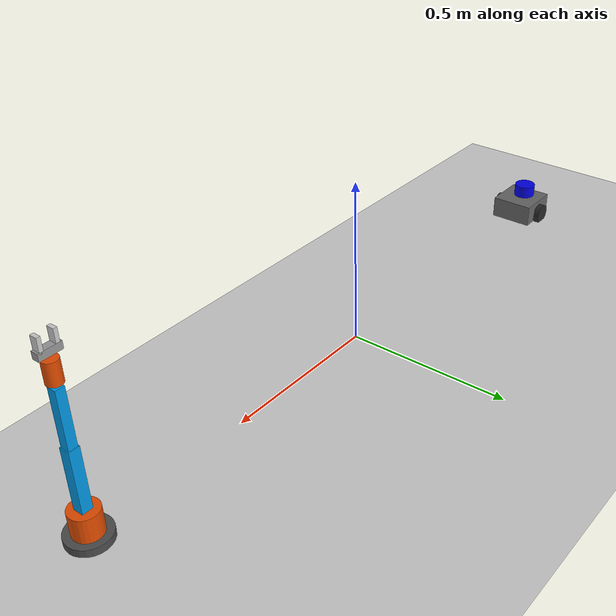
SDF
<?xml version="1.0" ?>
<sdf version="1.9">
  <world name="default">
    <physics name="1ms" type="ode">
      <max_step_size>0.001</max_step_size>
      <real_time_factor>1.0</real_time_factor>
    </physics>

    <light type="directional" name="sun">
      <cast_shadows>true</cast_shadows>
      <pose>0 0 10 0 0 0</pose>
      <diffuse>0.8 0.8 0.8 1</diffuse>
      <direction>-0.5 0.1 -0.9</direction>
    </light>

    <model name="ground_plane">
      <static>true</static>
      <link name="link">
        <collision name="collision">
          <geometry><plane><normal>0 0 1</normal></plane></geometry>
          <surface><friction><ode><mu>1.0</mu><mu2>1.0</mu2></ode></friction></surface>
        </collision>
        <visual name="visual">
          <geometry><plane><normal>0 0 1</normal><size>100 100</size></plane></geometry>
          <material><ambient>0.8 0.8 0.8 1</ambient><diffuse>0.8 0.8 0.8 1</diffuse></material>
        </visual>
      </link>
    </model>

    <!-- ========== TURTLEBOT3 (İKA) ========== -->
    <model name="turtlebot3">
      <pose>-1 0 0.035 0 0 0</pose>
      <link name="base_link">
        <inertial><mass>1.0</mass>
          <inertia><ixx>0.001</ixx><ixy>0</ixy><ixz>0</ixz><iyy>0.001</iyy><iyz>0</iyz><izz>0.001</izz></inertia>
        </inertial>
        <visual name="body"><geometry><box><size>0.14 0.14 0.07</size></box></geometry>
          <material><ambient>0.3 0.3 0.3 1</ambient><diffuse>0.4 0.4 0.4 1</diffuse></material>
        </visual>
        <collision name="body"><geometry><box><size>0.14 0.14 0.07</size></box></geometry></collision>
        <collision name="caster">
          <pose>-0.05 0 -0.023 0 0 0</pose>
          <geometry><sphere><radius>0.012</radius></sphere></geometry>
          <surface><friction><ode><mu>0</mu><mu2>0</mu2><slip1>1</slip1><slip2>1</slip2></ode></friction></surface>
        </collision>
      </link>
      <link name="lidar"><pose relative_to="base_link">-0.02 0 0.055 0 0 0</pose>
        <inertial><mass>0.05</mass><inertia><ixx>0.00001</ixx><ixy>0</ixy><ixz>0</ixz><iyy>0.00001</iyy><iyz>0</iyz><izz>0.00001</izz></inertia></inertial>
        <visual name="v"><geometry><cylinder><radius>0.035</radius><length>0.04</length></cylinder></geometry>
          <material><ambient>0 0 0.8 1</ambient><diffuse>0 0 0.9 1</diffuse></material></visual>
      </link>
      <joint name="lidar_joint" type="fixed"><parent>base_link</parent><child>lidar</child></joint>
      <link name="wl"><pose relative_to="base_link">0 0.08 -0.012 -1.5708 0 0</pose>
        <inertial><mass>0.05</mass><inertia><ixx>0.00005</ixx><ixy>0</ixy><ixz>0</ixz><iyy>0.00005</iyy><iyz>0</iyz><izz>0.00005</izz></inertia></inertial>
        <visual name="v"><geometry><cylinder><radius>0.033</radius><length>0.018</length></cylinder></geometry>
          <material><ambient>0.1 0.1 0.1 1</ambient><diffuse>0.15 0.15 0.15 1</diffuse></material></visual>
        <collision name="c"><geometry><cylinder><radius>0.033</radius><length>0.018</length></cylinder></geometry>
          <surface><friction><ode><mu>1.5</mu><mu2>1.5</mu2></ode></friction></surface></collision>
      </link>
      <link name="wr"><pose relative_to="base_link">0 -0.08 -0.012 -1.5708 0 0</pose>
        <inertial><mass>0.05</mass><inertia><ixx>0.00005</ixx><ixy>0</ixy><ixz>0</ixz><iyy>0.00005</iyy><iyz>0</iyz><izz>0.00005</izz></inertia></inertial>
        <visual name="v"><geometry><cylinder><radius>0.033</radius><length>0.018</length></cylinder></geometry>
          <material><ambient>0.1 0.1 0.1 1</ambient><diffuse>0.15 0.15 0.15 1</diffuse></material></visual>
        <collision name="c"><geometry><cylinder><radius>0.033</radius><length>0.018</length></cylinder></geometry>
          <surface><friction><ode><mu>1.5</mu><mu2>1.5</mu2></ode></friction></surface></collision>
      </link>
      <joint name="wl_joint" type="revolute"><parent>base_link</parent><child>wl</child><axis><xyz>0 0 1</xyz></axis></joint>
      <joint name="wr_joint" type="revolute"><parent>base_link</parent><child>wr</child><axis><xyz>0 0 1</xyz></axis></joint>
      <plugin filename="libignition-gazebo6-diff-drive-system.so" name="ignition::gazebo::systems::DiffDrive">
        <left_joint>wl_joint</left_joint><right_joint>wr_joint</right_joint>
        <wheel_separation>0.160</wheel_separation><wheel_radius>0.033</wheel_radius>
        <topic>ugv_cmd_vel</topic><odom_topic>ugv_odom</odom_topic><odom_publish_frequency>30</odom_publish_frequency>
      </plugin>
    </model>

    <!-- ========== ROBOT KOL (6-DOF) ========== -->
    <model name="robot_arm">
      <pose>1 0 0 0 0 0</pose>

      <!-- Base (sabit) -->
      <link name="base_link">
        <inertial><mass>2.0</mass><inertia><ixx>0.01</ixx><ixy>0</ixy><ixz>0</ixz><iyy>0.01</iyy><iyz>0</iyz><izz>0.01</izz></inertia></inertial>
        <visual name="v"><geometry><cylinder><radius>0.06</radius><length>0.04</length></cylinder></geometry>
          <material><ambient>0.2 0.2 0.2 1</ambient><diffuse>0.3 0.3 0.3 1</diffuse></material></visual>
        <collision name="c"><geometry><cylinder><radius>0.06</radius><length>0.04</length></cylinder></geometry></collision>
      </link>

      <!-- Link 1 - Shoulder rotation -->
      <link name="link1">
        <pose relative_to="base_link">0 0 0.05 0 0 0</pose>
        <inertial><mass>0.5</mass><inertia><ixx>0.001</ixx><ixy>0</ixy><ixz>0</ixz><iyy>0.001</iyy><iyz>0</iyz><izz>0.001</izz></inertia></inertial>
        <visual name="v"><geometry><cylinder><radius>0.04</radius><length>0.08</length></cylinder></geometry>
          <material><ambient>0.8 0.2 0.0 1</ambient><diffuse>0.9 0.3 0.0 1</diffuse></material></visual>
        <collision name="c"><geometry><cylinder><radius>0.04</radius><length>0.08</length></cylinder></geometry></collision>
      </link>
      <joint name="world_fix" type="fixed"><parent>world</parent><child>base_link</child></joint>
      <joint name="joint1" type="revolute">
        <parent>base_link</parent><child>link1</child>
        <axis><xyz>0 0 1</xyz><limit><lower>-3.14</lower><upper>3.14</upper><effort>50</effort></limit></axis>
      </joint>

      <!-- Link 2 - Shoulder lift -->
      <link name="link2">
        <pose relative_to="link1">0 0 0.12 0 0 0</pose>
        <inertial><mass>0.4</mass><inertia><ixx>0.002</ixx><ixy>0</ixy><ixz>0</ixz><iyy>0.002</iyy><iyz>0</iyz><izz>0.0005</izz></inertia></inertial>
        <visual name="v"><geometry><box><size>0.03 0.03 0.2</size></box></geometry>
          <material><ambient>0.0 0.5 0.8 1</ambient><diffuse>0.0 0.6 0.9 1</diffuse></material></visual>
        <collision name="c"><geometry><box><size>0.03 0.03 0.2</size></box></geometry></collision>
      </link>
      <joint name="joint2" type="revolute">
        <parent>link1</parent><child>link2</child>
        <axis><xyz>0 1 0</xyz><limit><lower>-1.57</lower><upper>1.57</upper><effort>50</effort></limit></axis>
      </joint>

      <!-- Link 3 - Elbow -->
      <link name="link3">
        <pose relative_to="link2">0 0 0.18 0 0 0</pose>
        <inertial><mass>0.3</mass><inertia><ixx>0.001</ixx><ixy>0</ixy><ixz>0</ixz><iyy>0.001</iyy><iyz>0</iyz><izz>0.0003</izz></inertia></inertial>
        <visual name="v"><geometry><box><size>0.025 0.025 0.16</size></box></geometry>
          <material><ambient>0.0 0.5 0.8 1</ambient><diffuse>0.0 0.6 0.9 1</diffuse></material></visual>
        <collision name="c"><geometry><box><size>0.025 0.025 0.16</size></box></geometry></collision>
      </link>
      <joint name="joint3" type="revolute">
        <parent>link2</parent><child>link3</child>
        <axis><xyz>0 1 0</xyz><limit><lower>-2.0</lower><upper>2.0</upper><effort>30</effort></limit></axis>
      </joint>

      <!-- Link 4 - Wrist rotation -->
      <link name="link4">
        <pose relative_to="link3">0 0 0.12 0 0 0</pose>
        <inertial><mass>0.2</mass><inertia><ixx>0.0005</ixx><ixy>0</ixy><ixz>0</ixz><iyy>0.0005</iyy><iyz>0</iyz><izz>0.0002</izz></inertia></inertial>
        <visual name="v"><geometry><cylinder><radius>0.02</radius><length>0.06</length></cylinder></geometry>
          <material><ambient>0.8 0.2 0.0 1</ambient><diffuse>0.9 0.3 0.0 1</diffuse></material></visual>
        <collision name="c"><geometry><cylinder><radius>0.02</radius><length>0.06</length></cylinder></geometry></collision>
      </link>
      <joint name="joint4" type="revolute">
        <parent>link3</parent><child>link4</child>
        <axis><xyz>0 0 1</xyz><limit><lower>-3.14</lower><upper>3.14</upper><effort>20</effort></limit></axis>
      </joint>

      <!-- Gripper base -->
      <link name="gripper_base">
        <pose relative_to="link4">0 0 0.05 0 0 0</pose>
        <inertial><mass>0.1</mass><inertia><ixx>0.0001</ixx><ixy>0</ixy><ixz>0</ixz><iyy>0.0001</iyy><iyz>0</iyz><izz>0.0001</izz></inertia></inertial>
        <visual name="v"><geometry><box><size>0.06 0.02 0.02</size></box></geometry>
          <material><ambient>0.5 0.5 0.5 1</ambient><diffuse>0.6 0.6 0.6 1</diffuse></material></visual>
        <collision name="c"><geometry><box><size>0.06 0.02 0.02</size></box></geometry></collision>
      </link>
      <joint name="gripper_joint" type="fixed">
        <parent>link4</parent><child>gripper_base</child>
      </joint>

      <!-- Left finger -->
      <link name="finger_left">
        <pose relative_to="gripper_base">-0.02 0 0.025 0 0 0</pose>
        <inertial><mass>0.02</mass><inertia><ixx>0.00001</ixx><ixy>0</ixy><ixz>0</ixz><iyy>0.00001</iyy><iyz>0</iyz><izz>0.00001</izz></inertia></inertial>
        <visual name="v"><geometry><box><size>0.01 0.02 0.04</size></box></geometry>
          <material><ambient>0.7 0.7 0.7 1</ambient><diffuse>0.8 0.8 0.8 1</diffuse></material></visual>
        <collision name="c"><geometry><box><size>0.01 0.02 0.04</size></box></geometry></collision>
      </link>
      <joint name="finger_left_joint" type="prismatic">
        <parent>gripper_base</parent><child>finger_left</child>
        <axis><xyz>1 0 0</xyz><limit><lower>-0.02</lower><upper>0.0</upper><effort>10</effort></limit></axis>
      </joint>

      <!-- Right finger -->
      <link name="finger_right">
        <pose relative_to="gripper_base">0.02 0 0.025 0 0 0</pose>
        <inertial><mass>0.02</mass><inertia><ixx>0.00001</ixx><ixy>0</ixy><ixz>0</ixz><iyy>0.00001</iyy><iyz>0</iyz><izz>0.00001</izz></inertia></inertial>
        <visual name="v"><geometry><box><size>0.01 0.02 0.04</size></box></geometry>
          <material><ambient>0.7 0.7 0.7 1</ambient><diffuse>0.8 0.8 0.8 1</diffuse></material></visual>
        <collision name="c"><geometry><box><size>0.01 0.02 0.04</size></box></geometry></collision>
      </link>
      <joint name="finger_right_joint" type="prismatic">
        <parent>gripper_base</parent><child>finger_right</child>
        <axis><xyz>1 0 0</xyz><limit><lower>0.0</lower><upper>0.02</upper><effort>10</effort></limit></axis>
      </joint>

      <!-- Joint position controller plugin -->
      <plugin filename="libignition-gazebo6-joint-position-controller-system.so" name="ignition::gazebo::systems::JointPositionController">
        <joint_name>joint1</joint_name><topic>arm_joint1_cmd</topic><p_gain>20</p_gain><i_gain>0.1</i_gain><d_gain>1.0</d_gain>
      </plugin>
      <plugin filename="libignition-gazebo6-joint-position-controller-system.so" name="ignition::gazebo::systems::JointPositionController">
        <joint_name>joint2</joint_name><topic>arm_joint2_cmd</topic><p_gain>20</p_gain><i_gain>0.1</i_gain><d_gain>1.0</d_gain>
      </plugin>
      <plugin filename="libignition-gazebo6-joint-position-controller-system.so" name="ignition::gazebo::systems::JointPositionController">
        <joint_name>joint3</joint_name><topic>arm_joint3_cmd</topic><p_gain>15</p_gain><i_gain>0.1</i_gain><d_gain>0.5</d_gain>
      </plugin>
      <plugin filename="libignition-gazebo6-joint-position-controller-system.so" name="ignition::gazebo::systems::JointPositionController">
        <joint_name>joint4</joint_name><topic>arm_joint4_cmd</topic><p_gain>10</p_gain><i_gain>0.1</i_gain><d_gain>0.5</d_gain>
      </plugin>
      <plugin filename="libignition-gazebo6-joint-state-publisher-system.so" name="ignition::gazebo::systems::JointStatePublisher">
        <topic>arm_joint_states</topic>
      </plugin>
    </model>
  </world>
</sdf>
